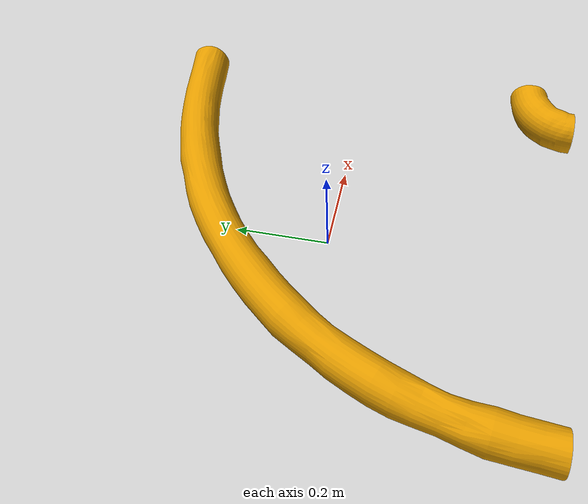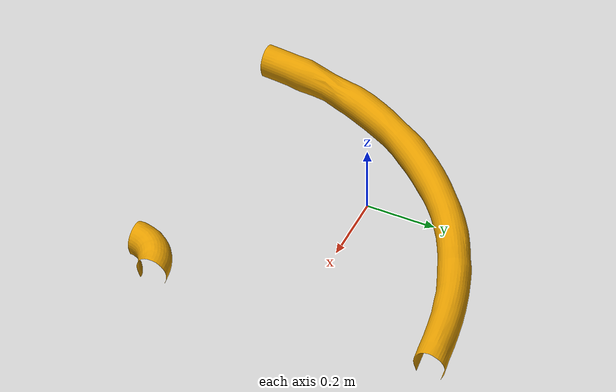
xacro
<?xml version="1.0"?>
<robot name="robot" xmlns:xacro="http://www.ros.org/wiki/xacro">
  <link name="RacingEdgeCurve_complex_link">
    <inertial>
      <origin xyz="0 0 0" rpy="0 0 0"/>
      <mass value="1"/>
      <inertia ixx="1" ixy="0" ixz="0" iyy="1" iyz="0" izz="1"/>
    </inertial>
    <visual>
      <origin xyz="0 0 0" rpy="0 0 0"/>
      <geometry>
        <mesh filename="package://gazebo_race_modules/meshes/RacingEdgeCurve_complex.dae"/>
      </geometry>
    </visual>
    <collision>
      <origin xyz="0 0 0" rpy="0 0 0"/>
      <geometry>
        <mesh filename="package://gazebo_race_modules/meshes/RacingEdgeCurve_complex.dae"/>
      </geometry>
    </collision>
  </link>
  <gazebo> <static>true</static></gazebo>
</robot>
